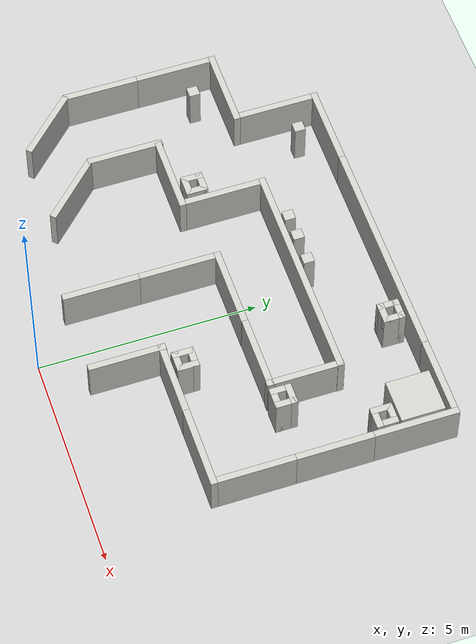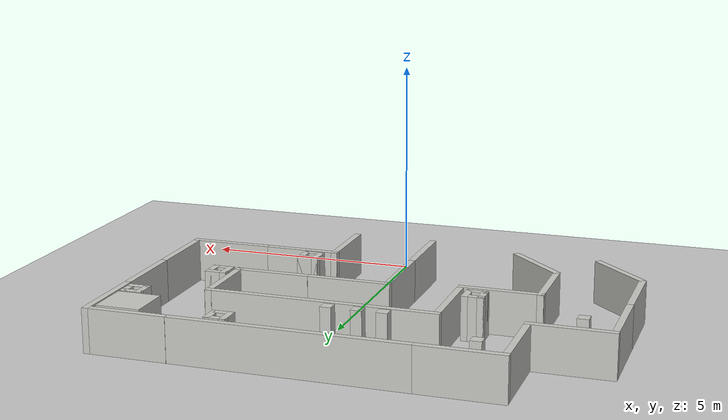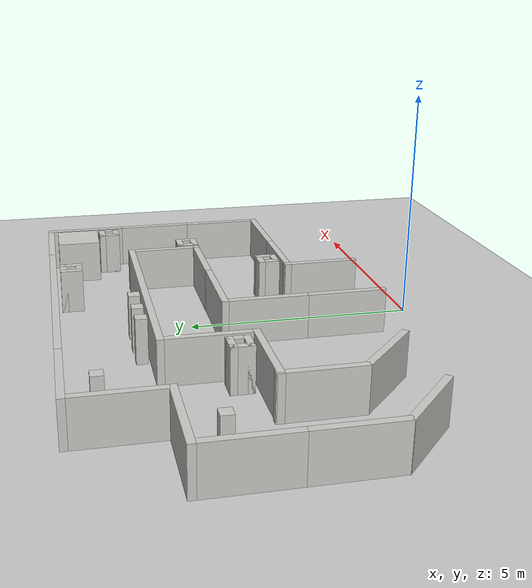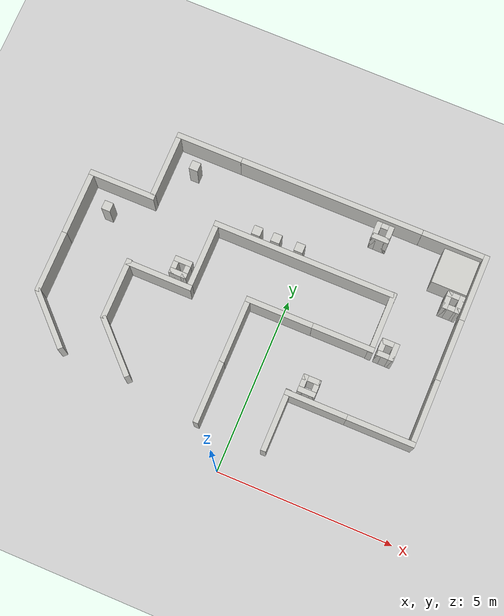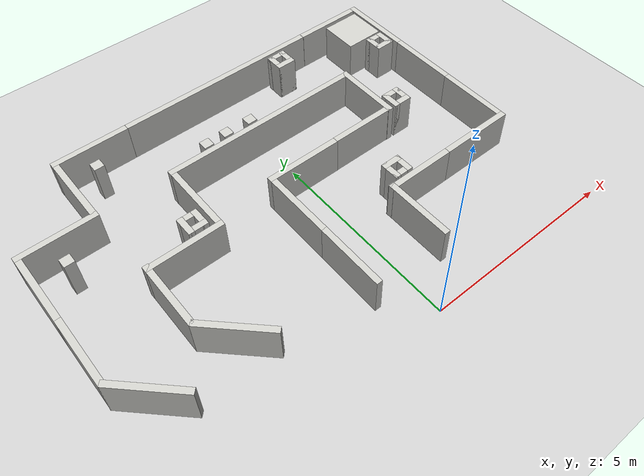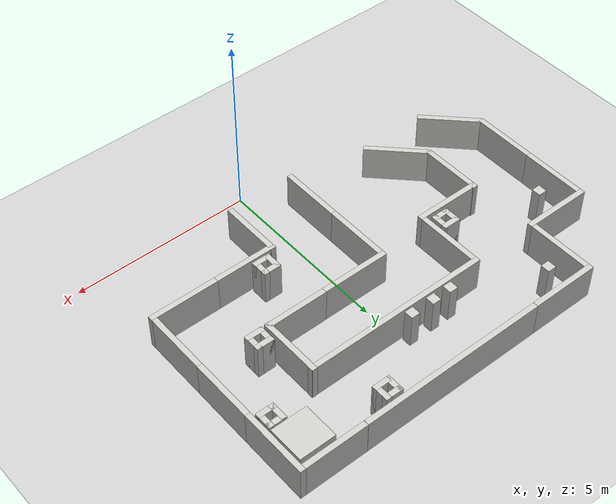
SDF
<sdf version="1.6">
 <world name="default">
  <model name="ground_plane">
   <static>1</static>
   <link name="link">
    <collision name="collision">
     <geometry><plane><normal>0 0 1</normal><size>100 100</size></plane></geometry>
     <surface><friction><ode><mu>100</mu><mu2>50</mu2></ode></friction></surface>
    </collision>
    <visual name="visual">
     <cast_shadows>0</cast_shadows>
     <geometry><plane><normal>0 0 1</normal><size>100 100</size></plane></geometry>
     <material>
      <script><uri>file://media/materials/scripts/concrete.material</uri><name>Concrete/1</name></script>
     </material>
    </visual>
   </link>
  </model>
  <model name="track_corner">
   <static>1</static>
   <pose>-0.070069 3.5697 0 0 -0 0</pose>
   <link name="Wall_1">
    <collision name="Wall_1_Collision">
     <geometry><box><size>1.75 0.15 1</size></box></geometry>
     <pose>0 0 0.5 0 -0 0</pose>
    </collision>
    <visual name="Wall_1_Visual">
     <pose>0 0 0.5 0 -0 0</pose>
     <geometry><box><size>1.75 0.15 1</size></box></geometry>
     <material>
      <script><uri>file://media/materials/scripts/gazebo.material</uri><name>Gazebo/CeilingTiled</name></script>
      <ambient>1 0.764706 0.305882 1</ambient>
     </material>
    </visual>
    <pose>-0.882493 -0.073007 0 0 0 -1.5708</pose>
   </link>
   <link name="Wall_2">
    <collision name="Wall_2_Collision">
     <geometry><box><size>1.91042 0.15 1</size></box></geometry>
     <pose>0 0 0.5 0 -0 0</pose>
    </collision>
    <visual name="Wall_2_Visual">
     <pose>0 0 0.5 0 -0 0</pose>
     <geometry><box><size>1.91042 0.15 1</size></box></geometry>
     <material>
      <script><uri>file://media/materials/scripts/gazebo.material</uri><name>Gazebo/CeilingTiled</name></script>
      <ambient>1 0.764706 0.305882 1</ambient>
     </material>
    </visual>
    <pose>-0.002284 0.876825 0 0 -0 3.1414</pose>
   </link>
  </model>
  <model name="track_straight">
   <static>1</static>
   <pose>1.75298 3.49604 0 0 0 -1.57079</pose>
   <link name="Wall_1">
    <collision name="Wall_1_Collision">
     <geometry><box><size>1.75 0.15 1</size></box></geometry>
     <pose>0 0 0.5 0 -0 0</pose>
    </collision>
    <visual name="Wall_1_Visual">
     <pose>0 0 0.5 0 -0 0</pose>
     <geometry><box><size>1.75 0.15 1</size></box></geometry>
     <material>
      <script><uri>file://media/materials/scripts/gazebo.material</uri><name>Gazebo/CeilingTiled</name></script>
      <ambient>1 0.764706 0.305882 1</ambient>
     </material>
    </visual>
    <pose>-0.955 0.002 0 0 0 -1.5708</pose>
   </link>
   <link name="Wall_2">
    <collision name="Wall_2_Collision">
     <geometry><box><size>1.75 0.15 1</size></box></geometry>
     <pose>0 0 0.5 0 -0 0</pose>
    </collision>
    <visual name="Wall_2_Visual">
     <pose>0 0 0.5 0 -0 0</pose>
     <geometry><box><size>1.75 0.15 1</size></box></geometry>
     <material>
      <script><uri>file://media/materials/scripts/gazebo.material</uri><name>Gazebo/CeilingTiled</name></script>
      <ambient>1 0.764706 0.305882 1</ambient>
     </material>
    </visual>
    <pose>0.955 0.002 0 0 0 -1.5708</pose>
   </link>
  </model>
  <model name="track_corner_0">
   <static>1</static>
   <pose>3.57826 3.41797 0 0 -0 3.14159</pose>
   <link name="Wall_1">
    <collision name="Wall_1_Collision">
     <geometry><box><size>1.75 0.15 1</size></box></geometry>
     <pose>0 0 0.5 0 -0 0</pose>
    </collision>
    <visual name="Wall_1_Visual">
     <pose>0 0 0.5 0 -0 0</pose>
     <geometry><box><size>1.75 0.15 1</size></box></geometry>
     <material>
      <script><uri>file://media/materials/scripts/gazebo.material</uri><name>Gazebo/CeilingTiled</name></script>
      <ambient>1 0.764706 0.305882 1</ambient>
     </material>
    </visual>
    <pose>-0.882493 -0.073007 0 0 0 -1.5708</pose>
   </link>
   <link name="Wall_2">
    <collision name="Wall_2_Collision">
     <geometry><box><size>1.91042 0.15 1</size></box></geometry>
     <pose>0 0 0.5 0 -0 0</pose>
    </collision>
    <visual name="Wall_2_Visual">
     <pose>0 0 0.5 0 -0 0</pose>
     <geometry><box><size>1.91042 0.15 1</size></box></geometry>
     <material>
      <script><uri>file://media/materials/scripts/gazebo.material</uri><name>Gazebo/CeilingTiled</name></script>
      <ambient>1 0.764706 0.305882 1</ambient>
     </material>
    </visual>
    <pose>-0.002284 0.876825 0 0 -0 3.1414</pose>
   </link>
  </model>
  <model name="track_straight_0">
   <static>1</static>
   <pose>3.50637 5.2393 0 0 -0 0</pose>
   <link name="Wall_1">
    <collision name="Wall_1_Collision">
     <geometry><box><size>1.75 0.15 1</size></box></geometry>
     <pose>0 0 0.5 0 -0 0</pose>
    </collision>
    <visual name="Wall_1_Visual">
     <pose>0 0 0.5 0 -0 0</pose>
     <geometry><box><size>1.75 0.15 1</size></box></geometry>
     <material>
      <script><uri>file://media/materials/scripts/gazebo.material</uri><name>Gazebo/CeilingTiled</name></script>
      <ambient>1 0.764706 0.305882 1</ambient>
     </material>
    </visual>
    <pose>-0.955 0.002 0 0 0 -1.5708</pose>
   </link>
   <link name="Wall_2">
    <collision name="Wall_2_Collision">
     <geometry><box><size>1.75 0.15 1</size></box></geometry>
     <pose>0 0 0.5 0 -0 0</pose>
    </collision>
    <visual name="Wall_2_Visual">
     <pose>0 0 0.5 0 -0 0</pose>
     <geometry><box><size>1.75 0.15 1</size></box></geometry>
     <material>
      <script><uri>file://media/materials/scripts/gazebo.material</uri><name>Gazebo/CeilingTiled</name></script>
      <ambient>1 0.764706 0.305882 1</ambient>
     </material>
    </visual>
    <pose>0.955 0.002 0 0 0 -1.5708</pose>
   </link>
  </model>
  <model name="track_corner_1">
   <static>1</static>
   <pose>3.58413 7.06382 0 0 0 -1.57079</pose>
   <link name="Wall_1">
    <collision name="Wall_1_Collision">
     <geometry><box><size>1.75 0.15 1</size></box></geometry>
     <pose>0 0 0.5 0 -0 0</pose>
    </collision>
    <visual name="Wall_1_Visual">
     <pose>0 0 0.5 0 -0 0</pose>
     <geometry><box><size>1.75 0.15 1</size></box></geometry>
     <material>
      <script><uri>file://media/materials/scripts/gazebo.material</uri><name>Gazebo/CeilingTiled</name></script>
      <ambient>1 0.764706 0.305882 1</ambient>
     </material>
    </visual>
    <pose>-0.882493 -0.073007 0 0 0 -1.5708</pose>
   </link>
   <link name="Wall_2">
    <collision name="Wall_2_Collision">
     <geometry><box><size>1.91042 0.15 1</size></box></geometry>
     <pose>0 0 0.5 0 -0 0</pose>
    </collision>
    <visual name="Wall_2_Visual">
     <pose>0 0 0.5 0 -0 0</pose>
     <geometry><box><size>1.91042 0.15 1</size></box></geometry>
     <material>
      <script><uri>file://media/materials/scripts/gazebo.material</uri><name>Gazebo/CeilingTiled</name></script>
      <ambient>1 0.764706 0.305882 1</ambient>
     </material>
    </visual>
    <pose>-0.002284 0.876825 0 0 -0 3.1414</pose>
   </link>
  </model>
  <model name="track_straight_3_0">
   <static>1</static>
   <pose>0.006821 6.99136 0 0 0 -1.57079</pose>
   <link name="Wall_1">
    <collision name="Wall_1_Collision">
     <geometry><box><size>5.25 0.15 1</size></box></geometry>
     <pose>0 0 0.5 0 -0 0</pose>
    </collision>
    <visual name="Wall_1_Visual">
     <pose>0 0 0.5 0 -0 0</pose>
     <geometry><box><size>5.25 0.15 1</size></box></geometry>
     <material>
      <script><uri>file://media/materials/scripts/gazebo.material</uri><name>Gazebo/CeilingTiled</name></script>
      <ambient>1 0.764706 0.305882 1</ambient>
     </material>
    </visual>
    <pose>-0.955 0.002 0 0 0 -1.5708</pose>
   </link>
   <link name="Wall_2">
    <collision name="Wall_2_Collision">
     <geometry><box><size>5.25 0.15 1</size></box></geometry>
     <pose>0 0 0.5 0 -0 0</pose>
    </collision>
    <visual name="Wall_2_Visual">
     <pose>0 0 0.5 0 -0 0</pose>
     <geometry><box><size>5.25 0.15 1</size></box></geometry>
     <material>
      <script><uri>file://media/materials/scripts/gazebo.material</uri><name>Gazebo/CeilingTiled</name></script>
      <ambient>1 0.764706 0.305882 1</ambient>
     </material>
    </visual>
    <pose>0.955 0.002 0 0 0 -1.5708</pose>
   </link>
  </model>
  <model name="track_corner_2">
   <static>1</static>
   <pose>-3.56996 7.06835 0 0 -0 0</pose>
   <link name="Wall_1">
    <collision name="Wall_1_Collision">
     <geometry><box><size>1.75 0.15 1</size></box></geometry>
     <pose>0 0 0.5 0 -0 0</pose>
    </collision>
    <visual name="Wall_1_Visual">
     <pose>0 0 0.5 0 -0 0</pose>
     <geometry><box><size>1.75 0.15 1</size></box></geometry>
     <material>
      <script><uri>file://media/materials/scripts/gazebo.material</uri><name>Gazebo/CeilingTiled</name></script>
      <ambient>1 0.764706 0.305882 1</ambient>
     </material>
    </visual>
    <pose>-0.882493 -0.073007 0 0 0 -1.5708</pose>
   </link>
   <link name="Wall_2">
    <collision name="Wall_2_Collision">
     <geometry><box><size>1.91042 0.15 1</size></box></geometry>
     <pose>0 0 0.5 0 -0 0</pose>
    </collision>
    <visual name="Wall_2_Visual">
     <pose>0 0 0.5 0 -0 0</pose>
     <geometry><box><size>1.91042 0.15 1</size></box></geometry>
     <material>
      <script><uri>file://media/materials/scripts/gazebo.material</uri><name>Gazebo/CeilingTiled</name></script>
      <ambient>1 0.764706 0.305882 1</ambient>
     </material>
    </visual>
    <pose>-0.002284 0.876825 0 0 -0 3.1414</pose>
   </link>
  </model>
  <model name="track_corner_3">
   <static>1</static>
   <pose>-3.42233 5.0179 0 0 -0 3.14159</pose>
   <link name="Wall_1">
    <collision name="Wall_1_Collision">
     <geometry><box><size>1.75 0.15 1</size></box></geometry>
     <pose>0 0 0.5 0 -0 0</pose>
    </collision>
    <visual name="Wall_1_Visual">
     <pose>0 0 0.5 0 -0 0</pose>
     <geometry><box><size>1.75 0.15 1</size></box></geometry>
     <material>
      <script><uri>file://media/materials/scripts/gazebo.material</uri><name>Gazebo/CeilingTiled</name></script>
      <ambient>1 0.764706 0.305882 1</ambient>
     </material>
    </visual>
    <pose>-0.882493 -0.073007 0 0 0 -1.5708</pose>
   </link>
   <link name="Wall_2">
    <collision name="Wall_2_Collision">
     <geometry><box><size>1.91042 0.15 1</size></box></geometry>
     <pose>0 0 0.5 0 -0 0</pose>
    </collision>
    <visual name="Wall_2_Visual">
     <pose>0 0 0.5 0 -0 0</pose>
     <geometry><box><size>1.91042 0.15 1</size></box></geometry>
     <material>
      <script><uri>file://media/materials/scripts/gazebo.material</uri><name>Gazebo/CeilingTiled</name></script>
      <ambient>1 0.764706 0.305882 1</ambient>
     </material>
    </visual>
    <pose>-0.002284 0.876825 0 0 -0 3.1414</pose>
   </link>
  </model>
  <model name="track_corner_4">
   <static>1</static>
   <pose>-5.32743 5.18433 0 0 -0 0</pose>
   <link name="Wall_1">
    <collision name="Wall_1_Collision">
     <geometry><box><size>1.75 0.15 1</size></box></geometry>
     <pose>0 0 0.5 0 -0 0</pose>
    </collision>
    <visual name="Wall_1_Visual">
     <pose>0 0 0.5 0 -0 0</pose>
     <geometry><box><size>1.75 0.15 1</size></box></geometry>
     <material>
      <script><uri>file://media/materials/scripts/gazebo.material</uri><name>Gazebo/CeilingTiled</name></script>
      <ambient>1 0.764706 0.305882 1</ambient>
     </material>
    </visual>
    <pose>-0.882493 -0.073007 0 0 0 -1.5708</pose>
   </link>
   <link name="Wall_2">
    <collision name="Wall_2_Collision">
     <geometry><box><size>1.91042 0.15 1</size></box></geometry>
     <pose>0 0 0.5 0 -0 0</pose>
    </collision>
    <visual name="Wall_2_Visual">
     <pose>0 0 0.5 0 -0 0</pose>
     <geometry><box><size>1.91042 0.15 1</size></box></geometry>
     <material>
      <script><uri>file://media/materials/scripts/gazebo.material</uri><name>Gazebo/CeilingTiled</name></script>
      <ambient>1 0.764706 0.305882 1</ambient>
     </material>
    </visual>
    <pose>-0.002284 0.876825 0 0 -0 3.1414</pose>
   </link>
  </model>
  <model name="track_straight_2">
   <static>1</static>
   <pose>-5.25467 3.36186 0 0 -0 0</pose>
   <link name="Wall_1">
    <collision name="Wall_1_Collision">
     <geometry><box><size>1.75 0.15 1</size></box></geometry>
     <pose>0 0 0.5 0 -0 0</pose>
    </collision>
    <visual name="Wall_1_Visual">
     <pose>0 0 0.5 0 -0 0</pose>
     <geometry><box><size>1.75 0.15 1</size></box></geometry>
     <material>
      <script><uri>file://media/materials/scripts/gazebo.material</uri><name>Gazebo/CeilingTiled</name></script>
      <ambient>1 0.764706 0.305882 1</ambient>
     </material>
    </visual>
    <pose>-0.955 0.002 0 0 0 -1.5708</pose>
   </link>
   <link name="Wall_2">
    <collision name="Wall_2_Collision">
     <geometry><box><size>1.75 0.15 1</size></box></geometry>
     <pose>0 0 0.5 0 -0 0</pose>
    </collision>
    <visual name="Wall_2_Visual">
     <pose>0 0 0.5 0 -0 0</pose>
     <geometry><box><size>1.75 0.15 1</size></box></geometry>
     <material>
      <script><uri>file://media/materials/scripts/gazebo.material</uri><name>Gazebo/CeilingTiled</name></script>
      <ambient>1 0.764706 0.305882 1</ambient>
     </material>
    </visual>
    <pose>0.955 0.002 0 0 0 -1.5708</pose>
   </link>
  </model>
  <model name="obstacle_wall_full">
   <static>1</static>
   <pose>-3.70272 1.92414 0 0 0 -0.785398</pose>
   <link name="Wall">
    <collision name="Wall_Collision">
     <geometry><box><size>1.75 0.15 1</size></box></geometry>
     <pose>0 0 0.5 0 -0 0</pose>
    </collision>
    <visual name="Wall_Visual">
     <pose>0 0 0.5 0 -0 0</pose>
     <geometry><box><size>1.75 0.15 1</size></box></geometry>
     <material>
      <script><uri>file://media/materials/scripts/gazebo.material</uri><name>Gazebo/CeilingTiled</name></script>
      <ambient>1 0.764706 0.305882 1</ambient>
     </material>
    </visual>
   </link>
  </model>
  <model name="obstacle_wall_full_clone">
   <static>1</static>
   <pose>-5.61787 1.93079 0 0 0 -0.785398</pose>
   <link name="Wall">
    <collision name="Wall_Collision">
     <geometry><box><size>1.75 0.15 1</size></box></geometry>
     <pose>0 0 0.5 0 -0 0</pose>
    </collision>
    <visual name="Wall_Visual">
     <pose>0 0 0.5 0 -0 0</pose>
     <geometry><box><size>1.75 0.15 1</size></box></geometry>
     <material>
      <script><uri>file://media/materials/scripts/gazebo.material</uri><name>Gazebo/CeilingTiled</name></script>
      <ambient>1 0.764706 0.305882 1</ambient>
     </material>
    </visual>
   </link>
  </model>
  <model name="track_straight_1">
   <static>1</static>
   <pose>0.002464 1.75579 0 0 -0 0</pose>
   <link name="Wall_1">
    <collision name="Wall_1_Collision">
     <geometry><box><size>1.75 0.15 1</size></box></geometry>
     <pose>0 0 0.5 0 -0 0</pose>
    </collision>
    <visual name="Wall_1_Visual">
     <pose>0 0 0.5 0 -0 0</pose>
     <geometry><box><size>1.75 0.15 1</size></box></geometry>
     <material>
      <script><uri>file://media/materials/scripts/gazebo.material</uri><name>Gazebo/CeilingTiled</name></script>
      <ambient>1 0.764706 0.305882 1</ambient>
     </material>
    </visual>
    <pose>-0.955 0.002 0 0 0 -1.5708</pose>
   </link>
   <link name="Wall_2">
    <collision name="Wall_2_Collision">
     <geometry><box><size>1.75 0.15 1</size></box></geometry>
     <pose>0 0 0.5 0 -0 0</pose>
    </collision>
    <visual name="Wall_2_Visual">
     <pose>0 0 0.5 0 -0 0</pose>
     <geometry><box><size>1.75 0.15 1</size></box></geometry>
     <material>
      <script><uri>file://media/materials/scripts/gazebo.material</uri><name>Gazebo/CeilingTiled</name></script>
      <ambient>1 0.764706 0.305882 1</ambient>
     </material>
    </visual>
    <pose>0.955 0.002 0 0 0 -1.5708</pose>
   </link>
  </model>
  <model name="obstacle_squarepillar_medium_0">
   <static>1</static>
   <pose>1.40823 2.92547 0 0 -0 0</pose>
   <link name="Wall_1">
    <collision name="Wall_1_Collision">
     <geometry><box><size>0.5 0.15 1</size></box></geometry>
     <pose>0 0 0.5 0 -0 0</pose>
    </collision>
    <visual name="Wall_1_Visual">
     <pose>0 0 0.5 0 -0 0</pose>
     <geometry><box><size>0.5 0.15 1</size></box></geometry>
     <material>
      <script><uri>file://media/materials/scripts/gazebo.material</uri><name>Gazebo/CeilingTiled</name></script>
      <ambient>1 0.764706 0.305882 1</ambient>
     </material>
    </visual>
    <pose>-0.175 0 0 0 0 -1.5708</pose>
   </link>
   <link name="Wall_2">
    <collision name="Wall_2_Collision">
     <geometry><box><size>0.5 0.15 1</size></box></geometry>
     <pose>0 0 0.5 0 -0 0</pose>
    </collision>
    <visual name="Wall_2_Visual">
     <pose>0 0 0.5 0 -0 0</pose>
     <geometry><box><size>0.5 0.15 1</size></box></geometry>
     <material>
      <script><uri>file://media/materials/scripts/gazebo.material</uri><name>Gazebo/CeilingTiled</name></script>
      <ambient>1 0.764706 0.305882 1</ambient>
     </material>
    </visual>
    <pose>0 -0.175 0 0 -0 0</pose>
   </link>
   <link name="Wall_3">
    <collision name="Wall_3_Collision">
     <geometry><box><size>0.5 0.15 1</size></box></geometry>
     <pose>0 0 0.5 0 -0 0</pose>
    </collision>
    <visual name="Wall_3_Visual">
     <pose>0 0 0.5 0 -0 0</pose>
     <geometry><box><size>0.5 0.15 1</size></box></geometry>
     <material>
      <script><uri>file://media/materials/scripts/gazebo.material</uri><name>Gazebo/CeilingTiled</name></script>
      <ambient>1 0.764706 0.305882 1</ambient>
     </material>
    </visual>
    <pose>0.175 0 0 0 -0 1.5708</pose>
   </link>
   <link name="Wall_4">
    <collision name="Wall_4_Collision">
     <geometry><box><size>0.5 0.15 1</size></box></geometry>
     <pose>0 0 0.5 0 -0 0</pose>
    </collision>
    <visual name="Wall_4_Visual">
     <pose>0 0 0.5 0 -0 0</pose>
     <geometry><box><size>0.5 0.15 1</size></box></geometry>
     <material>
      <script><uri>file://media/materials/scripts/gazebo.material</uri><name>Gazebo/CeilingTiled</name></script>
      <ambient>1 0.764706 0.305882 1</ambient>
     </material>
    </visual>
    <pose>0 0.175 0 0 -0 3.14159</pose>
   </link>
  </model>
  <model name="obstacle_squarepillar_medium_1">
   <static>1</static>
   <pose>2.9526 4.61324 0 0 -0 0</pose>
   <link name="Wall_1">
    <collision name="Wall_1_Collision">
     <geometry><box><size>0.5 0.15 1</size></box></geometry>
     <pose>0 0 0.5 0 -0 0</pose>
    </collision>
    <visual name="Wall_1_Visual">
     <pose>0 0 0.5 0 -0 0</pose>
     <geometry><box><size>0.5 0.15 1</size></box></geometry>
     <material>
      <script><uri>file://media/materials/scripts/gazebo.material</uri><name>Gazebo/CeilingTiled</name></script>
      <ambient>1 0.764706 0.305882 1</ambient>
     </material>
    </visual>
    <pose>-0.175 0 0 0 0 -1.5708</pose>
   </link>
   <link name="Wall_2">
    <collision name="Wall_2_Collision">
     <geometry><box><size>0.5 0.15 1</size></box></geometry>
     <pose>0 0 0.5 0 -0 0</pose>
    </collision>
    <visual name="Wall_2_Visual">
     <pose>0 0 0.5 0 -0 0</pose>
     <geometry><box><size>0.5 0.15 1</size></box></geometry>
     <material>
      <script><uri>file://media/materials/scripts/gazebo.material</uri><name>Gazebo/CeilingTiled</name></script>
      <ambient>1 0.764706 0.305882 1</ambient>
     </material>
    </visual>
    <pose>0 -0.175 0 0 -0 0</pose>
   </link>
   <link name="Wall_3">
    <collision name="Wall_3_Collision">
     <geometry><box><size>0.5 0.15 1</size></box></geometry>
     <pose>0 0 0.5 0 -0 0</pose>
    </collision>
    <visual name="Wall_3_Visual">
     <pose>0 0 0.5 0 -0 0</pose>
     <geometry><box><size>0.5 0.15 1</size></box></geometry>
     <material>
      <script><uri>file://media/materials/scripts/gazebo.material</uri><name>Gazebo/CeilingTiled</name></script>
      <ambient>1 0.764706 0.305882 1</ambient>
     </material>
    </visual>
    <pose>0.175 0 0 0 -0 1.5708</pose>
   </link>
   <link name="Wall_4">
    <collision name="Wall_4_Collision">
     <geometry><box><size>0.5 0.15 1</size></box></geometry>
     <pose>0 0 0.5 0 -0 0</pose>
    </collision>
    <visual name="Wall_4_Visual">
     <pose>0 0 0.5 0 -0 0</pose>
     <geometry><box><size>0.5 0.15 1</size></box></geometry>
     <material>
      <script><uri>file://media/materials/scripts/gazebo.material</uri><name>Gazebo/CeilingTiled</name></script>
      <ambient>1 0.764706 0.305882 1</ambient>
     </material>
    </visual>
    <pose>0 0.175 0 0 -0 3.14159</pose>
   </link>
  </model>
  <model name="obstacle_squarepillar_medium_2">
   <static>1</static>
   <pose>4.09008 6.47666 0 0 -0 0</pose>
   <link name="Wall_1">
    <collision name="Wall_1_Collision">
     <geometry><box><size>0.5 0.15 1</size></box></geometry>
     <pose>0 0 0.5 0 -0 0</pose>
    </collision>
    <visual name="Wall_1_Visual">
     <pose>0 0 0.5 0 -0 0</pose>
     <geometry><box><size>0.5 0.15 1</size></box></geometry>
     <material>
      <script><uri>file://media/materials/scripts/gazebo.material</uri><name>Gazebo/CeilingTiled</name></script>
      <ambient>1 0.764706 0.305882 1</ambient>
     </material>
    </visual>
    <pose>-0.175 0 0 0 0 -1.5708</pose>
   </link>
   <link name="Wall_2">
    <collision name="Wall_2_Collision">
     <geometry><box><size>0.5 0.15 1</size></box></geometry>
     <pose>0 0 0.5 0 -0 0</pose>
    </collision>
    <visual name="Wall_2_Visual">
     <pose>0 0 0.5 0 -0 0</pose>
     <geometry><box><size>0.5 0.15 1</size></box></geometry>
     <material>
      <script><uri>file://media/materials/scripts/gazebo.material</uri><name>Gazebo/CeilingTiled</name></script>
      <ambient>1 0.764706 0.305882 1</ambient>
     </material>
    </visual>
    <pose>0 -0.175 0 0 -0 0</pose>
   </link>
   <link name="Wall_3">
    <collision name="Wall_3_Collision">
     <geometry><box><size>0.5 0.15 1</size></box></geometry>
     <pose>0 0 0.5 0 -0 0</pose>
    </collision>
    <visual name="Wall_3_Visual">
     <pose>0 0 0.5 0 -0 0</pose>
     <geometry><box><size>0.5 0.15 1</size></box></geometry>
     <material>
      <script><uri>file://media/materials/scripts/gazebo.material</uri><name>Gazebo/CeilingTiled</name></script>
      <ambient>1 0.764706 0.305882 1</ambient>
     </material>
    </visual>
    <pose>0.175 0 0 0 -0 1.5708</pose>
   </link>
   <link name="Wall_4">
    <collision name="Wall_4_Collision">
     <geometry><box><size>0.5 0.15 1</size></box></geometry>
     <pose>0 0 0.5 0 -0 0</pose>
    </collision>
    <visual name="Wall_4_Visual">
     <pose>0 0 0.5 0 -0 0</pose>
     <geometry><box><size>0.5 0.15 1</size></box></geometry>
     <material>
      <script><uri>file://media/materials/scripts/gazebo.material</uri><name>Gazebo/CeilingTiled</name></script>
      <ambient>1 0.764706 0.305882 1</ambient>
     </material>
    </visual>
    <pose>0 0.175 0 0 -0 3.14159</pose>
   </link>
  </model>
  <model name="obstacle_squarepillar_medium_3">
   <static>1</static>
   <pose>1.64704 7.53901 0 0 -0 0</pose>
   <link name="Wall_1">
    <collision name="Wall_1_Collision">
     <geometry><box><size>0.5 0.15 1</size></box></geometry>
     <pose>0 0 0.5 0 -0 0</pose>
    </collision>
    <visual name="Wall_1_Visual">
     <pose>0 0 0.5 0 -0 0</pose>
     <geometry><box><size>0.5 0.15 1</size></box></geometry>
     <material>
      <script><uri>file://media/materials/scripts/gazebo.material</uri><name>Gazebo/CeilingTiled</name></script>
      <ambient>1 0.764706 0.305882 1</ambient>
     </material>
    </visual>
    <pose>-0.175 0 0 0 0 -1.5708</pose>
   </link>
   <link name="Wall_2">
    <collision name="Wall_2_Collision">
     <geometry><box><size>0.5 0.15 1</size></box></geometry>
     <pose>0 0 0.5 0 -0 0</pose>
    </collision>
    <visual name="Wall_2_Visual">
     <pose>0 0 0.5 0 -0 0</pose>
     <geometry><box><size>0.5 0.15 1</size></box></geometry>
     <material>
      <script><uri>file://media/materials/scripts/gazebo.material</uri><name>Gazebo/CeilingTiled</name></script>
      <ambient>1 0.764706 0.305882 1</ambient>
     </material>
    </visual>
    <pose>0 -0.175 0 0 -0 0</pose>
   </link>
   <link name="Wall_3">
    <collision name="Wall_3_Collision">
     <geometry><box><size>0.5 0.15 1</size></box></geometry>
     <pose>0 0 0.5 0 -0 0</pose>
    </collision>
    <visual name="Wall_3_Visual">
     <pose>0 0 0.5 0 -0 0</pose>
     <geometry><box><size>0.5 0.15 1</size></box></geometry>
     <material>
      <script><uri>file://media/materials/scripts/gazebo.material</uri><name>Gazebo/CeilingTiled</name></script>
      <ambient>1 0.764706 0.305882 1</ambient>
     </material>
    </visual>
    <pose>0.175 0 0 0 -0 1.5708</pose>
   </link>
   <link name="Wall_4">
    <collision name="Wall_4_Collision">
     <geometry><box><size>0.5 0.15 1</size></box></geometry>
     <pose>0 0 0.5 0 -0 0</pose>
    </collision>
    <visual name="Wall_4_Visual">
     <pose>0 0 0.5 0 -0 0</pose>
     <geometry><box><size>0.5 0.15 1</size></box></geometry>
     <material>
      <script><uri>file://media/materials/scripts/gazebo.material</uri><name>Gazebo/CeilingTiled</name></script>
      <ambient>1 0.764706 0.305882 1</ambient>
     </material>
    </visual>
    <pose>0 0.175 0 0 -0 3.14159</pose>
   </link>
  </model>
  <model name="obstacle_squarepillar_large_1">
   <pose>3.83979 7.27171 0 0 -0 0</pose>
   <link name="Pillar">
    <collision name="Pillar_Collision">
     <geometry><box><size>1 1 1</size></box></geometry>
     <pose>0 0 0.5 0 -0 0</pose>
    </collision>
    <visual name="Pillar_Visual">
     <pose>0 0 0.5 0 -0 0</pose>
     <geometry><box><size>1 1 1</size></box></geometry>
     <material>
      <script><uri>file://media/materials/scripts/gazebo.material</uri><name>Gazebo/CeilingTiled</name></script>
      <ambient>1 0.764706 0.305882 1</ambient>
     </material>
    </visual>
   </link>
   <static>1</static>
  </model>
  <model name="obstacle_squarepillar_small">
   <static>1</static>
   <pose>-0.913187 6.28896 0 0 -0 0</pose>
   <link name="Pillar">
    <collision name="Pillar_Collision">
     <geometry><box><size>0.25 0.25 1</size></box></geometry>
     <pose>0 0 0.5 0 -0 0</pose>
    </collision>
    <visual name="Pillar_Visual">
     <pose>0 0 0.5 0 -0 0</pose>
     <geometry><box><size>0.25 0.25 1</size></box></geometry>
     <material>
      <script><uri>file://media/materials/scripts/gazebo.material</uri><name>Gazebo/CeilingTiled</name></script>
      <ambient>1 0.764706 0.305882 1</ambient>
     </material>
    </visual>
   </link>
  </model>
  <model name="obstacle_squarepillar_small_0">
   <static>1</static>
   <pose>-0.241274 6.28626 0 0 -0 0</pose>
   <link name="Pillar">
    <collision name="Pillar_Collision">
     <geometry><box><size>0.25 0.25 1</size></box></geometry>
     <pose>0 0 0.5 0 -0 0</pose>
    </collision>
    <visual name="Pillar_Visual">
     <pose>0 0 0.5 0 -0 0</pose>
     <geometry><box><size>0.25 0.25 1</size></box></geometry>
     <material>
      <script><uri>file://media/materials/scripts/gazebo.material</uri><name>Gazebo/CeilingTiled</name></script>
      <ambient>1 0.764706 0.305882 1</ambient>
     </material>
    </visual>
   </link>
  </model>
  <model name="obstacle_squarepillar_small_1">
   <static>1</static>
   <pose>-1.46683 6.27793 0 0 -0 0</pose>
   <link name="Pillar">
    <collision name="Pillar_Collision">
     <geometry><box><size>0.25 0.25 1</size></box></geometry>
     <pose>0 0 0.5 0 -0 0</pose>
    </collision>
    <visual name="Pillar_Visual">
     <pose>0 0 0.5 0 -0 0</pose>
     <geometry><box><size>0.25 0.25 1</size></box></geometry>
     <material>
      <script><uri>file://media/materials/scripts/gazebo.material</uri><name>Gazebo/CeilingTiled</name></script>
      <ambient>1 0.764706 0.305882 1</ambient>
     </material>
    </visual>
   </link>
  </model>
  <model name="obstacle_squarepillar_medium_4">
   <static>1</static>
   <pose>-2.95794 4.56285 0 0 -0 0</pose>
   <link name="Wall_1">
    <collision name="Wall_1_Collision">
     <geometry><box><size>0.5 0.15 1</size></box></geometry>
     <pose>0 0 0.5 0 -0 0</pose>
    </collision>
    <visual name="Wall_1_Visual">
     <pose>0 0 0.5 0 -0 0</pose>
     <geometry><box><size>0.5 0.15 1</size></box></geometry>
     <material>
      <script><uri>file://media/materials/scripts/gazebo.material</uri><name>Gazebo/CeilingTiled</name></script>
      <ambient>1 0.764706 0.305882 1</ambient>
     </material>
    </visual>
    <pose>-0.175 0 0 0 0 -1.5708</pose>
   </link>
   <link name="Wall_2">
    <collision name="Wall_2_Collision">
     <geometry><box><size>0.5 0.15 1</size></box></geometry>
     <pose>0 0 0.5 0 -0 0</pose>
    </collision>
    <visual name="Wall_2_Visual">
     <pose>0 0 0.5 0 -0 0</pose>
     <geometry><box><size>0.5 0.15 1</size></box></geometry>
     <material>
      <script><uri>file://media/materials/scripts/gazebo.material</uri><name>Gazebo/CeilingTiled</name></script>
      <ambient>1 0.764706 0.305882 1</ambient>
     </material>
    </visual>
    <pose>0 -0.175 0 0 -0 0</pose>
   </link>
   <link name="Wall_3">
    <collision name="Wall_3_Collision">
     <geometry><box><size>0.5 0.15 1</size></box></geometry>
     <pose>0 0 0.5 0 -0 0</pose>
    </collision>
    <visual name="Wall_3_Visual">
     <pose>0 0 0.5 0 -0 0</pose>
     <geometry><box><size>0.5 0.15 1</size></box></geometry>
     <material>
      <script><uri>file://media/materials/scripts/gazebo.material</uri><name>Gazebo/CeilingTiled</name></script>
      <ambient>1 0.764706 0.305882 1</ambient>
     </material>
    </visual>
    <pose>0.175 0 0 0 -0 1.5708</pose>
   </link>
   <link name="Wall_4">
    <collision name="Wall_4_Collision">
     <geometry><box><size>0.5 0.15 1</size></box></geometry>
     <pose>0 0 0.5 0 -0 0</pose>
    </collision>
    <visual name="Wall_4_Visual">
     <pose>0 0 0.5 0 -0 0</pose>
     <geometry><box><size>0.5 0.15 1</size></box></geometry>
     <material>
      <script><uri>file://media/materials/scripts/gazebo.material</uri><name>Gazebo/CeilingTiled</name></script>
      <ambient>1 0.764706 0.305882 1</ambient>
     </material>
    </visual>
    <pose>0 0.175 0 0 -0 3.14159</pose>
   </link>
  </model>
  <model name="obstacle_squarepillar_small_2">
   <static>1</static>
   <pose>-3.72598 7.30676 0 0 -0 0</pose>
   <link name="Pillar">
    <collision name="Pillar_Collision">
     <geometry><box><size>0.25 0.25 1</size></box></geometry>
     <pose>0 0 0.5 0 -0 0</pose>
    </collision>
    <visual name="Pillar_Visual">
     <pose>0 0 0.5 0 -0 0</pose>
     <geometry><box><size>0.25 0.25 1</size></box></geometry>
     <material>
      <script><uri>file://media/materials/scripts/gazebo.material</uri><name>Gazebo/CeilingTiled</name></script>
      <ambient>1 0.764706 0.305882 1</ambient>
     </material>
    </visual>
   </link>
  </model>
  <model name="obstacle_squarepillar_small_3">
   <static>1</static>
   <pose>-5.44934 5.35785 0 0 -0 0</pose>
   <link name="Pillar">
    <collision name="Pillar_Collision">
     <geometry><box><size>0.25 0.25 1</size></box></geometry>
     <pose>0 0 0.5 0 -0 0</pose>
    </collision>
    <visual name="Pillar_Visual">
     <pose>0 0 0.5 0 -0 0</pose>
     <geometry><box><size>0.25 0.25 1</size></box></geometry>
     <material>
      <script><uri>file://media/materials/scripts/gazebo.material</uri><name>Gazebo/CeilingTiled</name></script>
      <ambient>1 0.764706 0.305882 1</ambient>
     </material>
    </visual>
   </link>
  </model>
 </world>
</sdf>
